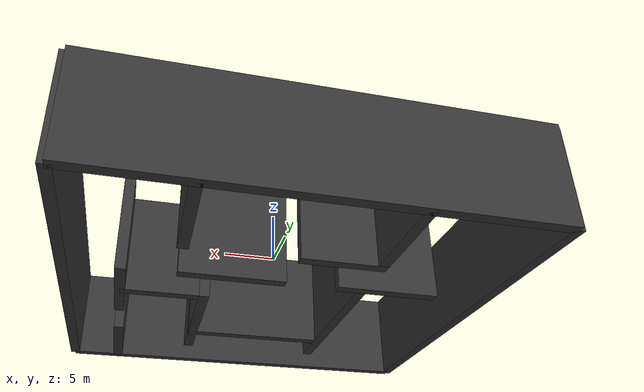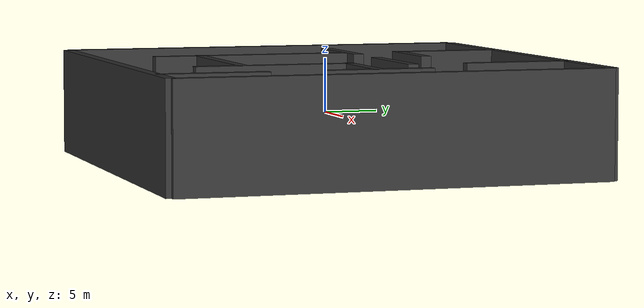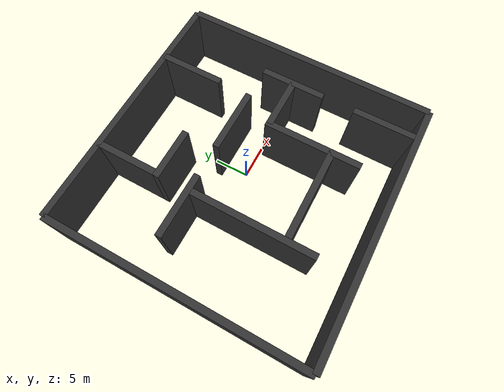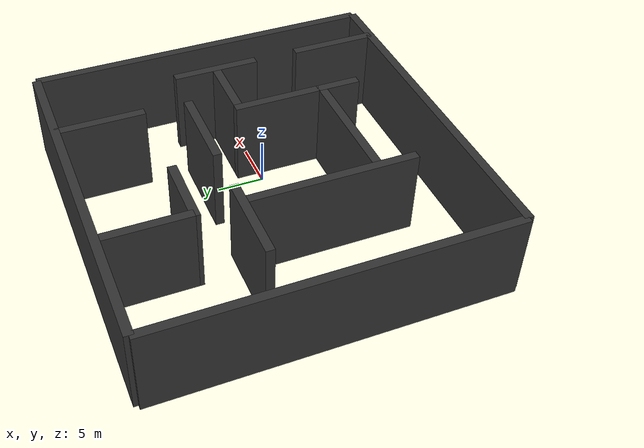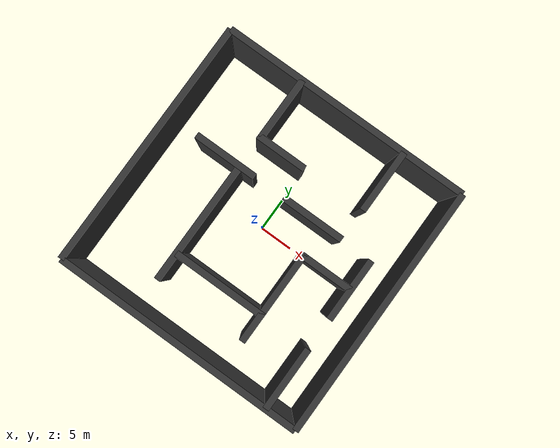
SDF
<?xml version="1.0" ?>
<sdf version='1.9'>
    <model name='wall'>
      <link name='length_right'>
        <pose>0 -20 0 0 -0 0</pose>
        <inertial>
          <mass>1.14395</mass>
          <inertia>
            <ixx>9.5329</ixx>
            <ixy>0</ixy>
            <ixz>0</ixz>
            <iyy>0.0238</iyy>
            <iyz>0</iyz>
            <izz>9.5567</izz>
          </inertia>
          <pose>0 0 0 0 -0 0</pose>
        </inertial>
        <collision name='box_collision'>
          <geometry>
            <box>
              <size>40 1 10</size>
            </box>
          </geometry>
          <surface>
            <friction>
              <ode/>
            </friction>
            <bounce/>
            <contact/>
          </surface>
        </collision>
        <visual name='box_visual'>
          <geometry>
            <box>
              <size>40 1 10</size>
            </box>
          </geometry>
          <material>
            <ambient>0.2 0.2 0.2 1</ambient>
            <diffuse>0.2 0.2 0.2 1</diffuse>
            <specular>0.2 0.2 0.2 1</specular>
          </material>
        </visual>
        <pose>0 0 0 0 -0 0</pose>
        <enable_wind>false</enable_wind>
      </link>
      <link name='length_left'>
        <pose>0 20 0 0 -0 0</pose>
        <inertial>
          <mass>1.14395</mass>
          <inertia>
            <ixx>9.5329</ixx>
            <ixy>0</ixy>
            <ixz>0</ixz>
            <iyy>0.0238</iyy>
            <iyz>0</iyz>
            <izz>9.5567</izz>
          </inertia>
          <pose>0 0 0 0 -0 0</pose>
        </inertial>
        <collision name='box_collision'>
          <geometry>
            <box>
              <size>40 1 10</size>
            </box>
          </geometry>
          <surface>
            <friction>
              <ode/>
            </friction>
            <bounce/>
            <contact/>
          </surface>
        </collision>
        <visual name='box_visual'>
          <geometry>
            <box>
              <size>40 1 10</size>
            </box>
          </geometry>
          <material>
            <ambient>0.2 0.2 0.2 1</ambient>
            <diffuse>0.2 0.2 0.2 1</diffuse>
            <specular>0.2 0.2 0.2 1</specular>
          </material>
        </visual>
        <pose>0 0 0 0 -0 0</pose>
        <enable_wind>false</enable_wind>
      </link>
      <link name='width_right'>
      <pose>-20 0 0 0 -0 0</pose>
        <inertial>
          <inertia>
            <ixx>0.16666</ixx>
            <ixy>0</ixy>
            <ixz>0</ixz>
            <iyy>0.16666</iyy>
            <iyz>0</iyz>
            <izz>0.16666</izz>
          </inertia>
          <mass>1000</mass>
          <pose>0 0 0 0 -0 0</pose>
        </inertial>
        <collision name='box_collision'>
          <geometry>
            <box>
              <size>1 40 10</size>
            </box>
          </geometry>
          <surface>
            <friction>
              <ode/>
            </friction>
            <bounce/>
            <contact/>
          </surface>
        </collision>
        <visual name='box_visual'>
          <geometry>
            <box>
              <size>1 40 10</size>
            </box>
          </geometry>
          <material>
            <ambient>0.2 0.2 0.2 1</ambient>
            <diffuse>0.2 0.2 0.2 1</diffuse>
            <specular>0.2 0.2 0.2 1</specular>
          </material>
        </visual>
        <pose>0 0 0 0 -0 0</pose>
        <enable_wind>false</enable_wind>
      </link>
      <link name='width_left'>
        <pose>20 0 0 0 -0 0</pose>
        <inertial>
          <inertia>
            <ixx>0.16666</ixx>
            <ixy>0</ixy>
            <ixz>0</ixz>
            <iyy>0.16666</iyy>
            <iyz>0</iyz>
            <izz>0.16666</izz>
          </inertia>
          <mass>1000</mass>
          <pose>0 0 0 0 -0 0</pose>
        </inertial>
        <collision name='box_collision'>
          <geometry>
            <box>
              <size>1 40 10</size>
            </box>
          </geometry>
          <surface>
            <friction>
              <ode/>
            </friction>
            <bounce/>
            <contact/>
          </surface>
        </collision>
        <visual name='box_visual'>
          <geometry>
            <box>
              <size>1 40 10</size>
            </box>
          </geometry>
          <material>
            <ambient>0.2 0.2 0.2 1</ambient>
            <diffuse>0.2 0.2 0.2 1</diffuse>
            <specular>0.2 0.2 0.2 1</specular>
          </material>
        </visual>
        <pose>0 0 0 0 -0 0</pose>
        <enable_wind>false</enable_wind>
      </link>
      <link name='top_from_right_to_middle_width'>
        <pose>15 -15 0 0 0 0</pose>
        <inertial>
          <mass>1000</mass>
          <inertia>
            <ixx>9.5329</ixx>
            <ixy>0</ixy>
            <ixz>0</ixz>
            <iyy>0.0238</iyy>
            <iyz>0</iyz>
            <izz>9.5567</izz>
          </inertia>
          <pose>0 0 0 0 -0 0</pose>
        </inertial>
        <collision name='box_collision'>
          <geometry>
            <box>
              <size>1 10 10</size>
            </box>
          </geometry>
          <surface>
            <friction>
              <ode/>
            </friction>
            <bounce/>
            <contact/>
          </surface>
        </collision>
        <visual name='box_visual'>
          <geometry>
            <box>
              <size>1 10 10</size>
            </box>
          </geometry>
          <material>
            <ambient>0.2 0.2 0.2 1</ambient>
            <diffuse>0.2 0.2 0.2 1</diffuse>
            <specular>0.2 0.2 0.2 1</specular>
          </material>
        </visual>
        <pose>0 0 0 0 -0 0</pose>
        <enable_wind>false</enable_wind>
      </link>
      <link name='top_middle_width'>
        <pose>15 0 0 0 0 0</pose>
        <inertial>
          <mass>1000</mass>
          <inertia>
            <ixx>9.5329</ixx>
            <ixy>0</ixy>
            <ixz>0</ixz>
            <iyy>0.0238</iyy>
            <iyz>0</iyz>
            <izz>9.5567</izz>
          </inertia>
          <pose>0 0 0 0 -0 0</pose>
        </inertial>
        <collision name='box_collision'>
          <geometry>
            <box>
              <size>1 10 10</size>
            </box>
          </geometry>
          <surface>
            <friction>
              <ode/>
            </friction>
            <bounce/>
            <contact/>
          </surface>
        </collision>
        <visual name='box_visual'>
          <geometry>
            <box>
              <size>1 10 10</size>
            </box>
          </geometry>
          <material>
            <ambient>0.2 0.2 0.2 1</ambient>
            <diffuse>0.2 0.2 0.2 1</diffuse>
            <specular>0.2 0.2 0.2 1</specular>
          </material>
        </visual>
        <pose>0 0 0 0 -0 0</pose>
        <enable_wind>false</enable_wind>
      </link>
      <link name='top_left_length'>
        <pose>10 15 0 0 0 0</pose>
        <inertial>
          <mass>1000</mass>
          <inertia>
            <ixx>9.5329</ixx>
            <ixy>0</ixy>
            <ixz>0</ixz>
            <iyy>0.0238</iyy>
            <iyz>0</iyz>
            <izz>9.5567</izz>
          </inertia>
          <pose>0 0 0 0 -0 0</pose>
        </inertial>
        <collision name='box_collision'>
          <geometry>
            <box>
              <size>1 10 10</size>
            </box>
          </geometry>
          <surface>
            <friction>
              <ode/>
            </friction>
            <bounce/>
            <contact/>
          </surface>
        </collision>
        <visual name='box_visual'>
          <geometry>
            <box>
              <size>1 10 10</size>
            </box>
          </geometry>
          <material>
            <ambient>0.2 0.2 0.2 1</ambient>
            <diffuse>0.2 0.2 0.2 1</diffuse>
            <specular>0.2 0.2 0.2 1</specular>
          </material>
        </visual>
        <pose>0 0 0 0 -0 0</pose>
        <enable_wind>false</enable_wind>
      </link>
      <link name='middle_length'>
        <pose>11 0 0 0 0 0</pose>
        <inertial>
          <mass>1000</mass>
          <inertia>
            <ixx>9.5329</ixx>
            <ixy>0</ixy>
            <ixz>0</ixz>
            <iyy>0.0238</iyy>
            <iyz>0</iyz>
            <izz>9.5567</izz>
          </inertia>
          <pose>0 0 0 0 -0 0</pose>
        </inertial>
        <collision name='box_collision'>
          <geometry>
            <box>
              <size>8 1 10</size>
            </box>
          </geometry>
          <surface>
            <friction>
              <ode/>
            </friction>
            <bounce/>
            <contact/>
          </surface>
        </collision>
        <visual name='box_visual'>
          <geometry>
            <box>
              <size>8 1 10</size>
            </box>
          </geometry>
          <material>
            <ambient>0.2 0.2 0.2 1</ambient>
            <diffuse>0.2 0.2 0.2 1</diffuse>
            <specular>0.2 0.2 0.2 1</specular>
          </material>
        </visual>
        <pose>0 0 0 0 -0 0</pose>
        <enable_wind>false</enable_wind>
      </link>

      <link name='middle_width'>
        <pose>7 -7 0 0 0 0</pose>
        <inertial>
          <mass>1000</mass>
          <inertia>
            <ixx>9.5329</ixx>
            <ixy>0</ixy>
            <ixz>0</ixz>
            <iyy>0.0238</iyy>
            <iyz>0</iyz>
            <izz>9.5567</izz>
          </inertia>
          <pose>0 0 0 0 -0 0</pose>
        </inertial>
        <collision name='box_collision'>
          <geometry>
            <box>
              <size>1 15 10</size>
            </box>
          </geometry>
          <surface>
            <friction>
              <ode/>
            </friction>
            <bounce/>
            <contact/>
          </surface>
        </collision>
        <visual name='box_visual'>
          <geometry>
            <box>
              <size>1 15 10</size>
            </box>
          </geometry>
          <material>
            <ambient>0.2 0.2 0.2 1</ambient>
            <diffuse>0.2 0.2 0.2 1</diffuse>
            <specular>0.2 0.2 0.2 1</specular>
          </material>
        </visual>
        <pose>0 0 0 0 -0 0</pose>
        <enable_wind>false</enable_wind>
      </link>
      <link name='middle_left_length'>
        <pose>5 5 0 0 0 0</pose>
        <inertial>
          <mass>1000</mass>
          <inertia>
            <ixx>9.5329</ixx>
            <ixy>0</ixy>
            <ixz>0</ixz>
            <iyy>0.0238</iyy>
            <iyz>0</iyz>
            <izz>9.5567</izz>
          </inertia>
          <pose>0 0 0 0 -0 0</pose>
        </inertial>
        <collision name='box_collision'>
          <geometry>
            <box>
              <size>10 1 10</size>
            </box>
          </geometry>
          <surface>
            <friction>
              <ode/>
            </friction>
            <bounce/>
            <contact/>
          </surface>
        </collision>
        <visual name='box_visual'>
          <geometry>
            <box>
              <size>10 1 10</size>
            </box>
          </geometry>
          <material>
            <ambient>0.2 0.2 0.2 1</ambient>
            <diffuse>0.2 0.2 0.2 1</diffuse>
            <specular>0.2 0.2 0.2 1</specular>
          </material>
        </visual>
        <pose>0 0 0 0 -0 0</pose>
        <enable_wind>false</enable_wind>
      </link>

      <link name='low_left_length'>
        <pose>-10 5 0 0 0 0</pose>
        <inertial>
          <mass>1000</mass>
          <inertia>
            <ixx>9.5329</ixx>
            <ixy>0</ixy>
            <ixz>0</ixz>
            <iyy>0.0238</iyy>
            <iyz>0</iyz>
            <izz>9.5567</izz>
          </inertia>
          <pose>0 0 0 0 -0 0</pose>
        </inertial>
        <collision name='box_collision'>
          <geometry>
            <box>
              <size>10 1 10</size>
            </box>
          </geometry>
          <surface>
            <friction>
              <ode/>
            </friction>
            <bounce/>
            <contact/>
          </surface>
        </collision>
        <visual name='box_visual'>
          <geometry>
            <box>
              <size>10 1 10</size>
            </box>
          </geometry>
          <material>
            <ambient>0.2 0.2 0.2 1</ambient>
            <diffuse>0.2 0.2 0.2 1</diffuse>
            <specular>0.2 0.2 0.2 1</specular>
          </material>
        </visual>
        <pose>0 0 0 0 -0 0</pose>
        <enable_wind>false</enable_wind>
      </link>

      <link name='left_blind alley_left_wall'>
        <pose>-4 10 0 0 0 0</pose>
        <inertial>
          <mass>1000</mass>
          <inertia>
            <ixx>9.5329</ixx>
            <ixy>0</ixy>
            <ixz>0</ixz>
            <iyy>0.0238</iyy>
            <iyz>0</iyz>
            <izz>9.5567</izz>
          </inertia>
          <pose>0 0 0 0 -0 0</pose>
        </inertial>
        <collision name='box_collision'>
          <geometry>
            <box>
              <size>8 1 10</size>
            </box>
          </geometry>
          <surface>
            <friction>
              <ode/>
            </friction>
            <bounce/>
            <contact/>
          </surface>
        </collision>
        <visual name='box_visual'>
          <geometry>
            <box>
              <size>8 1 10</size>
            </box>
          </geometry>
          <material>
            <ambient>0.2 0.2 0.2 1</ambient>
            <diffuse>0.2 0.2 0.2 1</diffuse>
            <specular>0.2 0.2 0.2 1</specular>
          </material>
        </visual>
        <pose>0 0 0 0 -0 0</pose>
        <enable_wind>false</enable_wind>
      </link>
      <link name='left_blind alley_bottom_wall'>
        <pose>-7.5 15 0 0 0 0</pose>
        <inertial>
          <mass>1000</mass>
          <inertia>
            <ixx>9.5329</ixx>
            <ixy>0</ixy>
            <ixz>0</ixz>
            <iyy>0.0238</iyy>
            <iyz>0</iyz>
            <izz>9.5567</izz>
          </inertia>
          <pose>0 0 0 0 -0 0</pose>
        </inertial>
        <collision name='box_collision'>
          <geometry>
            <box>
              <size>1 10 10</size>
            </box>
          </geometry>
          <surface>
            <friction>
              <ode/>
            </friction>
            <bounce/>
            <contact/>
          </surface>
        </collision>
        <visual name='box_visual'>
          <geometry>
            <box>
              <size>1 10 10</size>
            </box>
          </geometry>
          <material>
            <ambient>0.2 0.2 0.2 1</ambient>
            <diffuse>0.2 0.2 0.2 1</diffuse>
            <specular>0.2 0.2 0.2 1</specular>
          </material>
        </visual>
        <pose>0 0 0 0 -0 0</pose>
        <enable_wind>false</enable_wind>
      </link>
      <link name='left_bottom_width'>
        <pose>-7.5 -5 0 0 0 0</pose>
        <inertial>
          <mass>1000</mass>
          <inertia>
            <ixx>9.5329</ixx>
            <ixy>0</ixy>
            <ixz>0</ixz>
            <iyy>0.0238</iyy>
            <iyz>0</iyz>
            <izz>9.5567</izz>
          </inertia>
          <pose>0 0 0 0 -0 0</pose>
        </inertial>
        <collision name='box_collision'>
          <geometry>
            <box>
              <size>1 19 10</size>
            </box>
          </geometry>
          <surface>
            <friction>
              <ode/>
            </friction>
            <bounce/>
            <contact/>
          </surface>
        </collision>
        <visual name='box_visual'>
          <geometry>
            <box>
              <size>1 19 10</size>
            </box>
          </geometry>
          <material>
            <ambient>0.2 0.2 0.2 1</ambient>
            <diffuse>0.2 0.2 0.2 1</diffuse>
            <specular>0.2 0.2 0.2 1</specular>
          </material>
        </visual>
        <pose>0 0 0 0 -0 0</pose>
        <enable_wind>false</enable_wind>
      </link>

      <link name='right_middle_length'>
        <pose>0 -10 0 0 0 0</pose>
        <inertial>
          <mass>1000</mass>
          <inertia>
            <ixx>9.5329</ixx>
            <ixy>0</ixy>
            <ixz>0</ixz>
            <iyy>0.0238</iyy>
            <iyz>0</iyz>
            <izz>9.5567</izz>
          </inertia>
          <pose>0 0 0 0 -0 0</pose>
        </inertial>
        <collision name='box_collision'>
          <geometry>
            <box>
              <size>15 1 10</size>
            </box>
          </geometry>
          <surface>
            <friction>
              <ode/>
            </friction>
            <bounce/>
            <contact/>
          </surface>
        </collision>
        <visual name='box_visual'>
          <geometry>
            <box>
              <size>15 1 10</size>
            </box>
          </geometry>
          <material>
            <ambient>0.2 0.2 0.2 1</ambient>
            <diffuse>0.2 0.2 0.2 1</diffuse>
            <specular>0.2 0.2 0.2 1</specular>
          </material>
        </visual>
        <pose>0 0 0 0 -0 0</pose>
        <enable_wind>false</enable_wind>
      </link>

      <static>true</static>
      <self_collide>false</self_collide>
    </model>
</sdf>
